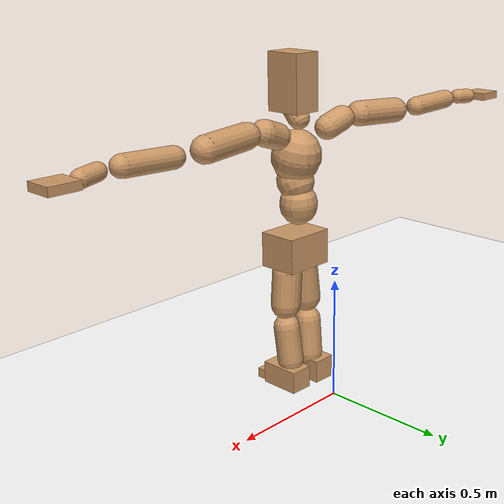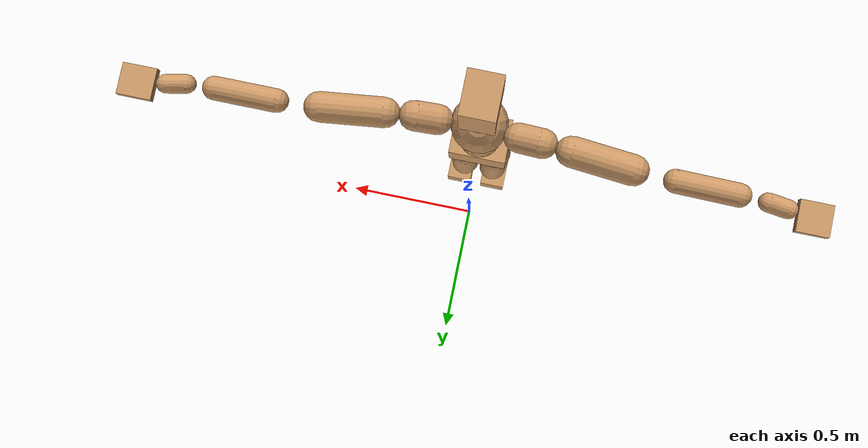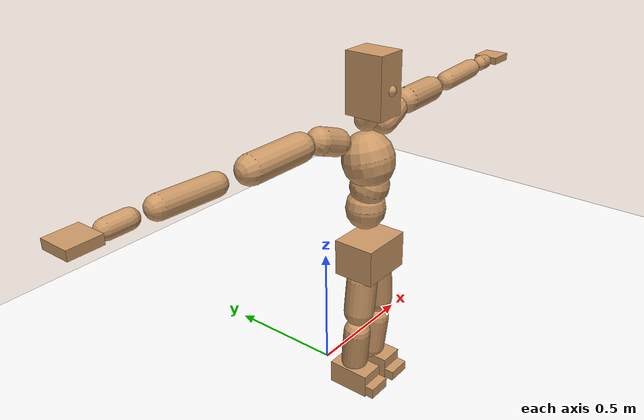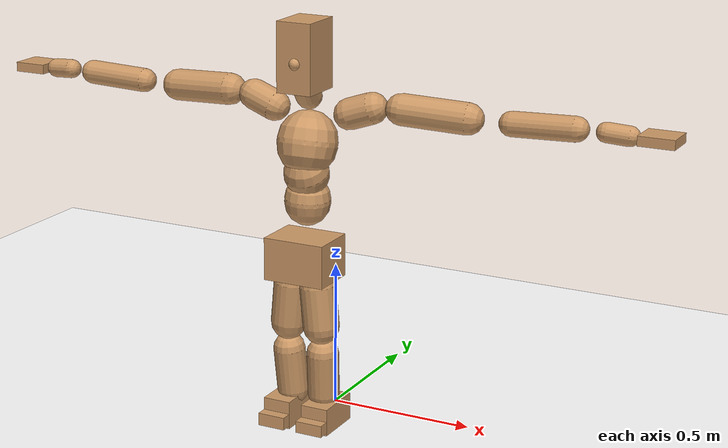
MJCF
<mujoco model="humanoid">
  <option integrator="implicitfast" />

  <visual>
    <global offwidth="1280" offheight="960" />
    <headlight active="1" ambient="0.34 0.34 0.34" diffuse="0.5 0.5 0.5" />
  </visual>

  <default>
    <joint damping="2" stiffness="2" armature="0.01" limited="true" solimplimit="0 .99 .01" />
    <geom condim="1" friction="0.7 0.005 0.0001" solimp=".99 .99 .003" solref="0.015 1" margin="0.001" rgba="0.8 0.6 .4 1" />
    <default class="smplcontact">
      <geom condim="3" friction="1. 0.005 0.0001" solref="0.015 1" solimp="0.98 0.98 0.001" priority="1" />
    </default>
    <default class="stiff_medium">
      <joint stiffness="10" />
    </default>
    <default class="stiff_medium_higher">
      <joint stiffness="50" />
    </default>
    <default class="stiff_high">
      <joint stiffness="100" />
    </default>
  </default>

  <asset>
    <texture type="skybox" builtin="gradient" rgb1="0.99 0.99 0.99" rgb2="0.608 0.828 0.892" width="100" />
    <texture builtin="flat" height="1278" mark="cross" markrgb="1 1 1" name="texgeom" random="0.01" rgb1="0.8 0.6 0.4" rgb2="0.8 0.6 0.4" type="cube" width="127" />
    <texture name="texplane" type="2d" builtin="checker" markrgb="1 1 1" rgb1="0.756 0.772 0.76" rgb2="0.6 0.6 0.6" width="100" height="100" />
    <material name="MatPlane" reflectance="0.5" texture="texplane" texrepeat="1 1" texuniform="true" />
    <material name="geom" texture="texgeom" texuniform="true" />
  </asset>

  <worldbody>
    <light name="tracking_light" pos="0 0 7" dir="0 0 -1" directional="true" cutoff="100" exponent="1" diffuse="1 1 1" specular="0.1 0.1 0.1" mode="trackcom" />
    <camera name="back" pos="0 3 2.4" xyaxes="-1 0 0 0 -1 2" mode="trackcom" />
    <camera name="side" pos="-3 0 2.4" xyaxes="0 -1 0 1 0 2" mode="trackcom" />
    <camera name="front_side" pos="-2.8 -2.8 0.8" xyaxes="0.5 -0.5 0 0.1 0.1 1" mode="trackcom" />
    <geom condim="3" name="floor" pos="0 0 0" rgba="1 1 1 1" size="100 100 .2" type="plane" material="MatPlane" />
    <body name="Pelvis" pos="-0.0018 -0.2233 0.603363" euler="90 0 0">
      <site name="Pelvis" size="0.01" />
      <freejoint name="Pelvis" />
      <geom type="box" pos="-0.0000 -0.0121 -0.0055" size="0.1069 0.0722 0.083" quat="1.0000 0.0000 0.0000 0.0000" density="3165.830099" name="Pelvis" />
      <body name="L_Hip" pos="0.0434375 -0.057125 -0.00425">
        <joint name="L_Hip_x" type="hinge" pos="0 0 0" axis="1 0 0" stiffness="4.682612346938775" range="-160.0 22.92" class="stiff_medium" damping="5.761376063259234" armature="0.003150516248715215"/>
        <joint name="L_Hip_y" type="hinge" pos="0 0 0" axis="0 1 0" stiffness="4.729285204081632" range="-70.0 70.0" class="stiff_medium" damping="5.227190951440424" armature="0.005777516910851337"/>
        <joint name="L_Hip_z" type="hinge" pos="0 0 0" axis="0 0 1" stiffness="4.725288673469388" range="-28.65 90.0" class="stiff_medium" damping="3.8557989532863886" armature="0.003146302077085307"/>
        <geom type="capsule" density="2040.816327" fromto="0.0043125 -0.046875 -0.0005625 0.017125 -0.187625 -0.00225" size="0.0615" name="L_Hip" />
        <body name="L_Knee" pos="0.0214375 -0.2345 -0.0028125">
          <joint name="L_Knee_x" type="hinge" pos="0 0 0" axis="1 0 0" range="-5.16 171.89" damping="3.3147767653831233" armature="0.0034682055009749263" stiffness="0.9900423469387756"/>
          <joint name="L_Knee_y" type="hinge" pos="0 0 0" axis="0 1 0" range="-4.58 6.88" damping="4.406653617352897" armature="0.006327520325715419" stiffness="0.9590346565349543"/>
          <joint name="L_Knee_z" type="hinge" pos="0 0 0" axis="0 0 1" range="-6.88 4.58" damping="3.3272526227236487" armature="0.0034456063533856696" stiffness="1.0040513265306124"/>
          <geom type="capsule" density="1234.567901" fromto="-0.0016875 -0.04975 -0.0054375 -0.0068125 -0.199 -0.021875" size="0.0541" name="L_Knee" />
          <body name="L_Ankle" pos="-0.0085 -0.24875 -0.0273125">
            <joint name="L_Ankle_x" type="hinge" pos="0 0 0" axis="1 0 0" range="-45.84 45.84" class="stiff_medium" damping="3.671773608490045" armature="0.005991965080890671" stiffness="6.25"/>
            <joint name="L_Ankle_y" type="hinge" pos="0 0 0" axis="0 1 0" range="-74.48 22.92" class="stiff_medium" damping="1.858589102984691" armature="0.006141072806637225" stiffness="6.25"/>
            <joint name="L_Ankle_z" type="hinge" pos="0 0 0" axis="0 0 1" range="-4.58 4.58" class="stiff_medium" damping="4.001717943795386" armature="0.007117220667419546" stiffness="6.25"/>
            <geom type="box" pos="0.0145625 -0.0149375 0.015125" size="0.0483 0.0464 0.085" quat="1.0000 0.0000 0.0000 0.0000" density="449.071558" name="L_Ankle" class="smplcontact" />
            <body name="L_Toe" pos="0.0165 -0.034875 0.0745625">
              <joint name="L_Toe_x" type="hinge" pos="0 0 0" axis="1 0 0" range="-91.67 22.92" armature="0.007683229914736312" damping="1.3859319891986324" stiffness="1.25"/>
              <joint name="L_Toe_y" type="hinge" pos="0 0 0" axis="0 1 0" range="-4.58 4.58" armature="0.008367648440754674" damping="1.446344395428927" stiffness="1.25"/>
              <joint name="L_Toe_z" type="hinge" pos="0 0 0" axis="0 0 1" range="-4.58 4.58" armature="0.009751505861703405" damping="1.561370060371932" stiffness="1.25"/>
              <geom type="box" pos="-0.001875 0.0034375 0.0155" size="0.0478 0.02 0.0496" quat="1.0000 0.0000 0.0000 0.0000" density="423.206892" name="L_Toe" class="smplcontact" />
            </body>
          </body>
        </body>
      </body>
      <body name="R_Hip" pos="-0.0423125 -0.0565625 -0.0026875">
        <joint name="R_Hip_x" type="hinge" pos="0 0 0" axis="1 0 0" stiffness="4.682612346938775" range="-160.0 22.92" class="stiff_medium" damping="5.761376063259234" armature="0.003150516248715215"/>
        <joint name="R_Hip_y" type="hinge" pos="0 0 0" axis="0 1 0" stiffness="4.729285204081632" range="-70.0 70.0" class="stiff_medium" damping="5.227190951440424" armature="0.005777516910851337"/>
        <joint name="R_Hip_z" type="hinge" pos="0 0 0" axis="0 0 1" stiffness="4.725288673469388" range="-90.0 28.65" class="stiff_medium" damping="3.8557989532863886" armature="0.003146302077085307"/>
        <geom type="capsule" density="2040.816327" fromto="-0.0048125 -0.0478125 -0.001125 -0.019125 -0.191312 -0.0044375" size="0.0606" name="R_Hip" />
        <body name="R_Knee" pos="-0.0239375 -0.239125 -0.0055625">
          <joint name="R_Knee_x" type="hinge" pos="0 0 0" axis="1 0 0" range="-5.16 171.89" damping="3.3147767653831233" armature="0.0034682055009749263" stiffness="0.9900423469387756"/>
          <joint name="R_Knee_y" type="hinge" pos="0 0 0" axis="0 1 0" range="-6.88 4.58" damping="4.406653617352897" armature="0.006327520325715419" stiffness="0.9590346565349543"/>
          <joint name="R_Knee_z" type="hinge" pos="0 0 0" axis="0 0 1" range="-4.58 6.88" damping="3.3272526227236487" armature="0.0034456063533856696" stiffness="1.0040513265306124"/>
          <geom type="capsule" density="1234.567901" fromto="0.002 -0.0498125 -0.0053125 0.007875 -0.199187 -0.021125" size="0.0541" name="R_Knee" />
          <body name="R_Ankle" pos="0.009875 -0.249 -0.0264375">
            <joint name="R_Ankle_x" type="hinge" pos="0 0 0" axis="1 0 0" range="-45.84 45.84" class="stiff_medium" damping="3.671773608490045" armature="0.005991965080890671" stiffness="6.25"/>
            <joint name="R_Ankle_y" type="hinge" pos="0 0 0" axis="0 1 0" range="-22.92 74.48" class="stiff_medium" damping="1.858589102984691" armature="0.006141072806637225" stiffness="6.25"/>
            <joint name="R_Ankle_z" type="hinge" pos="0 0 0" axis="0 0 1" range="-4.58 4.58" class="stiff_medium" damping="4.001717943795386" armature="0.007117220667419546" stiffness="6.25"/>
            <geom type="box" pos="-0.01325 -0.010875 0.016" size="0.0483 0.0478 0.0865" quat="1.0000 0.0000 0.0000 0.0000" density="434.700981" name="R_Ankle" class="smplcontact" />
            <body name="R_Toe" pos="-0.015875 -0.0300625 0.0770625">
              <joint name="R_Toe_x" type="hinge" pos="0 0 0" axis="1 0 0" range="-91.67 22.92" armature="0.007683229914736312" damping="1.3859319891986324" stiffness="1.25"/>
              <joint name="R_Toe_y" type="hinge" pos="0 0 0" axis="0 1 0" range="-4.58 4.58" armature="0.008367648440754674" damping="1.446344395428927" stiffness="1.25"/>
              <joint name="R_Toe_z" type="hinge" pos="0 0 0" axis="0 0 1" range="-4.58 4.58" armature="0.009751505861703405" damping="1.561370060371932" stiffness="1.25"/>
              <geom type="box" pos="0.002625 0.0028125 0.0141875" size="0.0479 0.0216 0.0493" quat="1.0000 0.0000 0.0000 0.0000" density="407.384095" name="R_Toe" class="smplcontact" />
            </body>
          </body>
        </body>
      </body>
      <body name="Torso" pos="-0.0025 0.109 -0.0267">
        <joint name="Torso_x" type="hinge" pos="0 0 0" axis="1 0 0" range="-25.78 57.3" class="stiff_medium" damping="17.81661784253542" armature="0.012204442824088032" stiffness="11.55979291666667"/>
        <joint name="Torso_y" type="hinge" pos="0 0 0" axis="0 1 0" range="-57.3 57.3" class="stiff_high" damping="32.66648617457636" armature="0.023482633249027437" stiffness="113.6051595744681"/>
        <joint name="Torso_z" type="hinge" pos="0 0 0" axis="0 0 1" range="-34.38 34.38" class="stiff_high" damping="26.53205559463283" armature="0.016035100718302133" stiffness="109.75141136363638"/>
        <geom type="capsule" density="2040.816327" fromto="0.0025 0.0608 0.0005 0.003 0.0743 0.0006" size="0.0769" name="Torso" />
        <body name="Spine" pos="0.0055 0.1352 0.0011">
          <joint name="Spine_x" type="hinge" pos="0 0 0" axis="1 0 0" stiffness="11.652306458333332" range="-25.78 57.3" class="stiff_medium" damping="18.346849955919502" armature="0.012838923235543207"/>
          <joint name="Spine_y" type="hinge" pos="0 0 0" axis="0 1 0" stiffness="12.490174523809525" range="-57.3 57.3" class="stiff_high" damping="13.727844217436889" armature="0.02357524439747789"/>
          <joint name="Spine_z" type="hinge" pos="0 0 0" axis="0 0 1" stiffness="24.140002666666668" range="-34.38 34.38" class="stiff_high" damping="18.060617405335822" armature="0.01876702252078363"/>
          <geom type="capsule" density="2040.816327" fromto="0.0007 0.0238 0.0114 0.0008 0.0291 0.014" size="0.0755" name="Spine" />
          <body name="Chest" pos="0.0015 0.0529 0.0254">
            <joint name="Chest_x" type="hinge" pos="0 0 0" axis="1 0 0" stiffness="12.52777088888889" range="-25.78 57.3" class="stiff_medium" damping="19.3234206846418" armature="0.013246821899117762"/>
            <joint name="Chest_y" type="hinge" pos="0 0 0" axis="0 1 0" stiffness="14.856075609756099" range="-57.3 57.3" class="stiff_high" damping="14.973397185345428" armature="0.023580695741040242"/>
            <joint name="Chest_z" type="hinge" pos="0 0 0" axis="0 0 1" stiffness="24.504841860465113" range="-34.38 34.38" class="stiff_high" damping="18.776413152497923" armature="0.019982087898338156"/>
            <geom type="capsule" density="2040.816327" fromto="-0.0009 0.0682 -0.0173 -0.001 0.0833 -0.0212" size="0.1002" name="Chest" />
            <body name="Neck" pos="-0.0028 0.2139 -0.0429">
              <joint name="Neck_x" type="hinge" pos="0 0 0" axis="1 0 0" range="-28.65 57.3" class="stiff_medium_higher" damping="9.999999999999996" armature="0.009999999999999993" stiffness="50.0"/>
              <joint name="Neck_y" type="hinge" pos="0 0 0" axis="0 1 0" range="-40.11 40.11" class="stiff_medium_higher" damping="10.0" armature="0.01" stiffness="50.0"/>
              <joint name="Neck_z" type="hinge" pos="0 0 0" axis="0 0 1" range="-40.11 40.11" class="stiff_medium_higher" damping="9.999999999999993" armature="0.009999999999999985" stiffness="50.0"/>
              <geom type="capsule" density="1000" fromto="0.001 0.013 0.0103 0.0041 0.052 0.0411" size="0.0436" name="Neck" />
              <body name="Head" pos="0.0052 0.065 0.0513">
                <joint name="Head_x" type="hinge" pos="0 0 0" axis="1 0 0" range="-28.65 57.3" class="stiff_medium_higher" damping="1.9999999999999973" armature="0.009999999999999974" stiffness="50.0"/>
                <joint name="Head_y" type="hinge" pos="0 0 0" axis="0 1 0" range="-40.11 40.11" class="stiff_medium_higher" damping="2.0" armature="0.010000000000000002" stiffness="50.0"/>
                <joint name="Head_z" type="hinge" pos="0 0 0" axis="0 0 1" range="-40.11 40.11" class="stiff_medium_higher" damping="1.9999999999999971" armature="0.00999999999999997" stiffness="50.0"/>
                <geom type="box" pos="-0.0042 0.0876 -0.0116" size="0.0606 0.1154 0.076" quat="1.0000 0.0000 0.0000 0.0000" density="1018.069894" name="Head" />
                <geom type="capsule" name="nose" size="0.02 0.01" pos="0 0.07 0.05" quat="1 0 0 0" mass="0" contype="0" conaffinity="0" />
              </body>
            </body>
            <body name="L_Thorax" pos="0.11032 0.17038 -0.04774">
              <joint name="L_Thorax_x" type="hinge" pos="0 0 0" axis="1 0 0" range="-10.89 4.58" class="stiff_medium_higher" damping="36.24085805878967" armature="0.018856138634744068" stiffness="87.06712295918368"/>
              <joint name="L_Thorax_y" type="hinge" pos="0 0 0" axis="0 1 0" range="-28.65 17.19" class="stiff_medium_higher" damping="40.96620891880995" armature="0.023898132129905863" stiffness="87.78041020408163"/>
              <joint name="L_Thorax_z" type="hinge" pos="0 0 0" axis="0 0 1" range="-31.51 40.11" class="stiff_medium_higher" damping="40.968357293553595" armature="0.023902786052476352" stiffness="87.77252448979593"/>
              <geom type="capsule" density="1000" fromto="0.02548 0.00854 -0.00252 0.10192 0.03416 -0.00994" size="0.0521" name="L_Thorax" />
              <body name="L_Shoulder" pos="0.1274 0.0427 -0.01246">
                <joint name="L_Shoulder_x" type="hinge" pos="0 0 0" axis="1 0 0" range="-97.4 97.4" class="stiff_medium" damping="10.216467793124652" armature="0.016750975720820935" stiffness="17.30848"/>
                <joint name="L_Shoulder_y" type="hinge" pos="0 0 0" axis="0 1 0" range="-108.86 80.21" class="stiff_medium" damping="12.210584630805666" armature="0.023662310849895677" stiffness="17.503030918367347"/>
                <joint name="L_Shoulder_z" type="hinge" pos="0 0 0" axis="0 0 1" range="-97.4 85.94" class="stiff_medium" damping="12.207996623471665" armature="0.02366780094775564" stiffness="17.491553877551024"/>
                <geom type="capsule" density="1000" fromto="0.07266 -0.00364 -0.0077 0.29078 -0.01428 -0.0308" size="0.0517" name="L_Shoulder" />
                <body name="L_Elbow" pos="0.36344 -0.01792 -0.0385">
                  <joint name="L_Elbow_x" type="hinge" pos="0 0 0" axis="1 0 0" range="-17.19 4.58" damping="7.58658152557291" armature="0.01362034881744751" stiffness="3.380601775510204"/>
                  <joint name="L_Elbow_y" type="hinge" pos="0 0 0" axis="0 1 0" range="-180.0 17.19" damping="9.758671052618118" armature="0.022523674987219203" stiffness="3.382455510204082"/>
                  <joint name="L_Elbow_z" type="hinge" pos="0 0 0" axis="0 0 1" range="-100.84 4.58" damping="9.760335979040743" armature="0.022552387617329566" stiffness="3.3793019183673465"/>
                  <geom type="capsule" density="1000" fromto="0.06972 0.00252 -0.00028 0.27916 0.01008 -0.00126" size="0.0405" name="L_Elbow" />
                  <body name="L_Wrist" pos="0.34888 0.0126 -0.00168">
                    <joint name="L_Wrist_x" type="hinge" pos="0 0 0" axis="1 0 0" range="-180.0 22.92" armature="0.013168550139584035" damping="2.8121939405269734" stiffness="3.002773530612245"/>
                    <joint name="L_Wrist_y" type="hinge" pos="0 0 0" axis="0 1 0" range="-17.19 17.19" armature="0.019145926143816022" damping="3.4076565933193694" stiffness="3.0325311428571426"/>
                    <joint name="L_Wrist_z" type="hinge" pos="0 0 0" axis="0 0 1" range="-22.92 22.92" armature="0.019468640829170613" damping="3.429448500174693" stiffness="3.0205285306122445"/>
                    <geom type="capsule" density="1000" fromto="0.02352 -0.00224 -0.0042 0.09408 -0.0091 -0.0168" size="0.0318" name="L_Wrist" class="smplcontact" />
                    <body name="L_Hand" pos="0.1176 -0.01148 -0.02086">
                      <joint name="L_Hand_x" type="hinge" pos="0 0 0" axis="1 0 0" range="-17.19 17.19" armature="0.010418235140997446" damping="2.4154112856734296" stiffness="2.8000000000000003"/>
                      <joint name="L_Hand_y" type="hinge" pos="0 0 0" axis="0 1 0" range="-51.57 51.57" armature="0.015057977012994024" damping="2.903871058996362" stiffness="2.8000000000000003"/>
                      <joint name="L_Hand_z" type="hinge" pos="0 0 0" axis="0 0 1" range="-91.67 91.67" armature="0.016294763602145518" damping="3.020772685456734" stiffness="2.8000000000000003"/>
                      <geom type="box" pos="0.06902 0.0014 -0.00812" size="0.0585 0.0158 0.0538" quat="1.0000 0.0000 0.0000 0.0000" density="400.552564" name="L_Hand" class="smplcontact" />
                    </body>
                  </body>
                </body>
              </body>
            </body>
            <body name="R_Thorax" pos="-0.11452 0.16632 -0.05404">
              <joint name="R_Thorax_x" type="hinge" pos="0 0 0" axis="1 0 0" range="-10.89 4.58" class="stiff_medium_higher" damping="36.24085805878967" armature="0.018856138634744068" stiffness="87.06712295918368"/>
              <joint name="R_Thorax_y" type="hinge" pos="0 0 0" axis="0 1 0" range="-17.19 28.65" class="stiff_medium_higher" damping="40.96620891880995" armature="0.023898132129905863" stiffness="87.78041020408163"/>
              <joint name="R_Thorax_z" type="hinge" pos="0 0 0" axis="0 0 1" range="-40.11 31.51" class="stiff_medium_higher" damping="40.968357293553595" armature="0.023902786052476352" stiffness="87.77252448979593"/>
              <geom type="capsule" density="1000" fromto="-0.02688 0.0091 -0.00252 -0.10752 0.0364 -0.01022" size="0.0511" name="R_Thorax" />
              <body name="R_Shoulder" pos="-0.1344 0.04564 -0.01274">
                <joint name="R_Shoulder_x" type="hinge" pos="0 0 0" axis="1 0 0" range="-97.4 97.4" class="stiff_medium" damping="10.216467793124652" armature="0.016750975720820935" stiffness="17.30848"/>
                <joint name="R_Shoulder_y" type="hinge" pos="0 0 0" axis="0 1 0" range="-80.21 108.86" class="stiff_medium" damping="12.210584630805666" armature="0.023662310849895677" stiffness="17.503030918367347"/>
                <joint name="R_Shoulder_z" type="hinge" pos="0 0 0" axis="0 0 1" range="-85.94 97.4" class="stiff_medium" damping="12.207996623471665" armature="0.02366780094775564" stiffness="17.491553877551024"/>
                <geom type="capsule" density="1000" fromto="-0.07098 -0.00378 -0.00602 -0.2842 -0.01498 -0.02394" size="0.0531" name="R_Shoulder" />
                <body name="R_Elbow" pos="-0.35518 -0.01862 -0.02996">
                  <joint name="R_Elbow_x" type="hinge" pos="0 0 0" axis="1 0 0" range="-17.19 4.58" damping="7.58658152557291" armature="0.01362034881744751" stiffness="3.380601775510204"/>
                  <joint name="R_Elbow_y" type="hinge" pos="0 0 0" axis="0 1 0" range="-17.19 180.0" damping="9.758671052618118" armature="0.022523674987219203" stiffness="3.382455510204082"/>
                  <joint name="R_Elbow_z" type="hinge" pos="0 0 0" axis="0 0 1" range="-4.58 100.84" damping="9.760335979040743" armature="0.022552387617329566" stiffness="3.3793019183673465"/>
                  <geom type="capsule" density="1000" fromto="-0.07154 0.00224 -0.00154 -0.28588 0.00868 -0.00616" size="0.0408" name="R_Elbow" />
                  <body name="R_Wrist" pos="-0.35742 0.01092 -0.00784">
                    <joint name="R_Wrist_x" type="hinge" pos="0 0 0" axis="1 0 0" range="-180.0 22.92" armature="0.013168550139584035" damping="2.8121939405269734" stiffness="3.002773530612245"/>
                    <joint name="R_Wrist_y" type="hinge" pos="0 0 0" axis="0 1 0" range="-17.19 17.19" armature="0.019145926143816022" damping="3.4076565933193694" stiffness="3.0325311428571426"/>
                    <joint name="R_Wrist_z" type="hinge" pos="0 0 0" axis="0 0 1" range="-22.92 22.92" armature="0.019468640829170613" damping="3.429448500174693" stiffness="3.0205285306122445"/>
                    <geom type="capsule" density="1000" fromto="-0.02366 -0.00168 -0.00294 -0.09478 -0.00686 -0.01162" size="0.0326" name="R_Wrist" class="smplcontact" />
                    <body name="R_Hand" pos="-0.11844 -0.00854 -0.01442">
                      <joint name="R_Hand_x" type="hinge" pos="0 0 0" axis="1 0 0" range="-17.19 17.19" armature="0.010418235140997446" damping="2.4154112856734296" stiffness="2.8000000000000003"/>
                      <joint name="R_Hand_y" type="hinge" pos="0 0 0" axis="0 1 0" range="-51.57 51.57" armature="0.015057977012994024" damping="2.903871058996362" stiffness="2.8000000000000003"/>
                      <joint name="R_Hand_z" type="hinge" pos="0 0 0" axis="0 0 1" range="-91.67 91.67" armature="0.016294763602145518" damping="3.020772685456734" stiffness="2.8000000000000003"/>
                      <geom type="box" pos="-0.06468 -0.00126 -0.01106" size="0.0569 0.0164 0.0546" quat="1.0000 0.0000 0.0000 0.0000" density="403.679611" name="R_Hand" class="smplcontact" />
                    </body>
                  </body>
                </body>
              </body>
            </body>
          </body>
        </body>
      </body>
    </body>
  </worldbody>
  <actuator>
    <general name="L_Hip_x" joint="L_Hip_x" biastype="affine" gainprm="134.5455305788832" biasprm="-100.82823820114426 -84.28702224489795 -0.7681834751012312" ctrllimited="true" ctrlrange="-1 1" forcerange="-168.5740444897959 168.5740444897959" />
    <general name="L_Hip_y" joint="L_Hip_y" biastype="affine" gainprm="104.00241357711633" biasprm="0.0 -85.12713367346939 -1.0454381902880847" ctrllimited="true" ctrlrange="-1 1" forcerange="-170.25426734693878 170.25426734693878" />
    <general name="L_Hip_z" joint="L_Hip_z" biastype="affine" gainprm="88.0675601736452" biasprm="45.53682947031718 -85.05519612244898 -0.7711597906572777" ctrllimited="true" ctrlrange="-1 1" forcerange="-170.11039224489795 170.11039224489795" />
    <general name="L_Knee_x" joint="L_Knee_x" biastype="affine" gainprm="137.6700859239888" biasprm="129.64548673316378 -89.1038112244898 -0.8286941913457808" ctrllimited="true" ctrlrange="-1 1" forcerange="-178.2076224489796 178.2076224489796" />
    <general name="L_Knee_y" joint="L_Knee_y" biastype="affine" gainprm="8.63194770327106" biasprm="1.7324153331172283 -86.3131190881459 -1.1016634043382243" ctrllimited="true" ctrlrange="-1 1" forcerange="-172.6262381762918 172.6262381762918" />
    <general name="L_Knee_z" joint="L_Knee_z" biastype="affine" gainprm="9.03712757714746" biasprm="-1.8137341559720035 -90.36461938775511 -0.8318131556809122" ctrllimited="true" ctrlrange="-1 1" forcerange="-180.72923877551023 180.72923877551023" />
    <general name="L_Ankle_x" joint="L_Ankle_x" biastype="affine" gainprm="45.003314762673796" biasprm="0.0 -56.25 -1.2239245361633484" ctrllimited="true" ctrlrange="-1 1" forcerange="-112.5 112.5" />
    <general name="L_Ankle_y" joint="L_Ankle_y" biastype="affine" gainprm="47.811113196819676" biasprm="-25.309455815482774 -56.25 -1.239059401989794" ctrllimited="true" ctrlrange="-1 1" forcerange="-112.5 112.5" />
    <general name="L_Ankle_z" joint="L_Ankle_z" biastype="affine" gainprm="4.496404485450391" biasprm="0.0 -56.25 -1.3339059812651288" ctrllimited="true" ctrlrange="-1 1" forcerange="-112.5 112.5" />
    <general name="L_Toe_x" joint="L_Toe_x" biastype="affine" gainprm="44.999387771856796" biasprm="-26.998061866787282 -45.0 -0.554372795679453" ctrllimited="true" ctrlrange="-1 1" forcerange="-90.0 90.0" />
    <general name="L_Toe_y" joint="L_Toe_y" biastype="affine" gainprm="3.597123588360313" biasprm="0.0 -45.0 -0.5785377581715708" ctrllimited="true" ctrlrange="-1 1" forcerange="-90.0 90.0" />
    <general name="L_Toe_z" joint="L_Toe_z" biastype="affine" gainprm="3.597123588360313" biasprm="0.0 -45.0 -0.6245480241487729" ctrllimited="true" ctrlrange="-1 1" forcerange="-90.0 90.0" />
    <general name="R_Hip_x" joint="R_Hip_x" biastype="affine" gainprm="134.5455305788832" biasprm="-100.82823820114426 -84.28702224489795 -0.7681834751012312" ctrllimited="true" ctrlrange="-1 1" forcerange="-168.5740444897959 168.5740444897959" />
    <general name="R_Hip_y" joint="R_Hip_y" biastype="affine" gainprm="104.00241357711633" biasprm="0.0 -85.12713367346939 -1.0454381902880847" ctrllimited="true" ctrlrange="-1 1" forcerange="-170.25426734693878 170.25426734693878" />
    <general name="R_Hip_z" joint="R_Hip_z" biastype="affine" gainprm="88.0675601736452" biasprm="-45.53682947031718 -85.05519612244898 -0.7711597906572777" ctrllimited="true" ctrlrange="-1 1" forcerange="-170.11039224489795 170.11039224489795" />
    <general name="R_Knee_x" joint="R_Knee_x" biastype="affine" gainprm="137.6700859239888" biasprm="129.64548673316378 -89.1038112244898 -0.8286941913457808" ctrllimited="true" ctrlrange="-1 1" forcerange="-178.2076224489796 178.2076224489796" />
    <general name="R_Knee_y" joint="R_Knee_y" biastype="affine" gainprm="8.63194770327106" biasprm="-1.7324153331172283 -86.3131190881459 -1.1016634043382243" ctrllimited="true" ctrlrange="-1 1" forcerange="-172.6262381762918 172.6262381762918" />
    <general name="R_Knee_z" joint="R_Knee_z" biastype="affine" gainprm="9.03712757714746" biasprm="1.8137341559720035 -90.36461938775511 -0.8318131556809122" ctrllimited="true" ctrlrange="-1 1" forcerange="-180.72923877551023 180.72923877551023" />
    <general name="R_Ankle_x" joint="R_Ankle_x" biastype="affine" gainprm="45.003314762673796" biasprm="0.0 -56.25 -1.2239245361633484" ctrllimited="true" ctrlrange="-1 1" forcerange="-112.5 112.5" />
    <general name="R_Ankle_y" joint="R_Ankle_y" biastype="affine" gainprm="47.811113196819676" biasprm="25.309455815482774 -56.25 -1.239059401989794" ctrllimited="true" ctrlrange="-1 1" forcerange="-112.5 112.5" />
    <general name="R_Ankle_z" joint="R_Ankle_z" biastype="affine" gainprm="4.496404485450391" biasprm="0.0 -56.25 -1.3339059812651288" ctrllimited="true" ctrlrange="-1 1" forcerange="-112.5 112.5" />
    <general name="R_Toe_x" joint="R_Toe_x" biastype="affine" gainprm="44.999387771856796" biasprm="-26.998061866787282 -45.0 -0.554372795679453" ctrllimited="true" ctrlrange="-1 1" forcerange="-90.0 90.0" />
    <general name="R_Toe_y" joint="R_Toe_y" biastype="affine" gainprm="3.597123588360313" biasprm="0.0 -45.0 -0.5785377581715708" ctrllimited="true" ctrlrange="-1 1" forcerange="-90.0 90.0" />
    <general name="R_Toe_z" joint="R_Toe_z" biastype="affine" gainprm="3.597123588360313" biasprm="0.0 -45.0 -0.6245480241487729" ctrllimited="true" ctrlrange="-1 1" forcerange="-90.0 90.0" />
    <general name="Torso_x" joint="Torso_x" biastype="affine" gainprm="201.14310764492842" biasprm="76.31235860577928 -277.43503000000004 -4.7510980913427785" ctrllimited="true" ctrlrange="-1 1" forcerange="-416.1525450000001 416.1525450000001" />
    <general name="Torso_y" joint="Torso_y" biastype="affine" gainprm="272.67246693299046" biasprm="0.0 -272.65238297872344 -6.533297234915273" ctrllimited="true" ctrlrange="-1 1" forcerange="-408.9785744680852 408.9785744680852" />
    <general name="Torso_z" joint="Torso_z" biastype="affine" gainprm="158.05367395985348" biasprm="0.0 -263.4033872727273 -5.306411118926566" ctrllimited="true" ctrlrange="-1 1" forcerange="-395.10508090909093 395.10508090909093" />
    <general name="Spine_x" joint="Spine_x" biastype="affine" gainprm="202.75286496534218" biasprm="76.9230898375973 -279.655355 -4.8924933215785344" ctrllimited="true" ctrlrange="-1 1" forcerange="-419.4830325 419.4830325" />
    <general name="Spine_y" joint="Spine_y" biastype="affine" gainprm="299.7862696190556" biasprm="0.0 -299.7641885714286 -6.8639221087184445" ctrllimited="true" ctrlrange="-1 1" forcerange="-449.6462828571429 449.6462828571429" />
    <general name="Spine_z" joint="Spine_z" biastype="affine" gainprm="173.82082214076556" biasprm="0.0 -289.680032 -6.020205801778608" ctrllimited="true" ctrlrange="-1 1" forcerange="-434.520048 434.520048" />
    <general name="Chest_x" joint="Chest_x" biastype="affine" gainprm="217.98615136277013" biasprm="82.70249748380492 -300.6665013333334 -5.152912182571146" ctrllimited="true" ctrlrange="-1 1" forcerange="-450.999752 450.999752" />
    <general name="Chest_y" joint="Chest_y" biastype="affine" gainprm="356.57207829543177" biasprm="0.0 -356.5458146341464 -7.486698592672714" ctrllimited="true" ctrlrange="-1 1" forcerange="-534.8187219512196 534.8187219512196" />
    <general name="Chest_z" joint="Chest_z" biastype="affine" gainprm="176.44785783296902" biasprm="0.0 -294.0581023255814 -6.258804384165974" ctrllimited="true" ctrlrange="-1 1" forcerange="-441.08715348837205 441.08715348837205" />
    <general name="Neck_x" joint="Neck_x" biastype="affine" gainprm="27.00198885760427" biasprm="9.000662952534757 -36.0 -0.7999999999999997" ctrllimited="true" ctrlrange="-1 1" forcerange="-72.0 72.0" />
    <general name="Neck_y" joint="Neck_y" biastype="affine" gainprm="25.20185626709732" biasprm="0.0 -36.0 -0.8" ctrllimited="true" ctrlrange="-1 1" forcerange="-72.0 72.0" />
    <general name="Neck_z" joint="Neck_z" biastype="affine" gainprm="25.20185626709732" biasprm="0.0 -36.0 -0.7999999999999994" ctrllimited="true" ctrlrange="-1 1" forcerange="-72.0 72.0" />
    <general name="Head_x" joint="Head_x" biastype="affine" gainprm="18.001325905069514" biasprm="6.000441968356505 -24.0 -0.7999999999999989" ctrllimited="true" ctrlrange="-1 1" forcerange="-48.0 48.0" />
    <general name="Head_y" joint="Head_y" biastype="affine" gainprm="16.801237511398213" biasprm="0.0 -24.0 -0.8" ctrllimited="true" ctrlrange="-1 1" forcerange="-48.0 48.0" />
    <general name="Head_z" joint="Head_z" biastype="affine" gainprm="16.801237511398213" biasprm="0.0 -24.0 -0.7999999999999989" ctrllimited="true" ctrlrange="-1 1" forcerange="-48.0 48.0" />
    <general name="L_Thorax_x" joint="L_Thorax_x" biastype="affine" gainprm="28.21000227853141" biasprm="-11.506471517616887 -208.96109510204082 -2.8992686447031737" ctrllimited="true" ctrlrange="-1 1" forcerange="-417.92219020408163 417.92219020408163" />
    <general name="L_Thorax_y" joint="L_Thorax_y" biastype="affine" gainprm="84.27540118209936" biasprm="-21.06885029552484 -210.6729844897959 -3.277296713504796" ctrllimited="true" ctrlrange="-1 1" forcerange="-421.3459689795918 421.3459689795918" />
    <general name="L_Thorax_z" joint="L_Thorax_z" biastype="affine" gainprm="131.65929338702185" biasprm="15.809409705785923 -210.6540587755102 -3.277468583484288" ctrllimited="true" ctrlrange="-1 1" forcerange="-421.3081175510204 421.3081175510204" />
    <general name="L_Shoulder_x" joint="L_Shoulder_x" biastype="affine" gainprm="141.23310021032776" biasprm="0.0 -83.080704 -2.7243914114999073" ctrllimited="true" ctrlrange="-1 1" forcerange="-166.161408 166.161408" />
    <general name="L_Shoulder_y" joint="L_Shoulder_y" biastype="affine" gainprm="138.61955280584408" biasprm="-21.005184259202586 -84.01454840816328 -3.256155901548178" ctrllimited="true" ctrlrange="-1 1" forcerange="-168.02909681632656 168.02909681632656" />
    <general name="L_Shoulder_z" joint="L_Shoulder_z" biastype="affine" gainprm="134.33037540273168" biasprm="-8.396564318290107 -83.9594586122449 -3.2554657662591104" ctrllimited="true" ctrlrange="-1 1" forcerange="-167.9189172244898 167.9189172244898" />
    <general name="L_Elbow_x" joint="L_Elbow_x" biastype="affine" gainprm="23.120771250680953" biasprm="-13.39241733904855 -121.70166391836734 -1.2138530440916657" ctrllimited="true" ctrlrange="-1 1" forcerange="-243.4033278367347 243.4033278367347" />
    <general name="L_Elbow_y" joint="L_Elbow_y" biastype="affine" gainprm="209.53995807470082" biasprm="-173.0067476755517 -121.76839836734695 -1.5613873684188988" ctrllimited="true" ctrlrange="-1 1" forcerange="-243.5367967346939 243.5367967346939" />
    <general name="L_Elbow_z" joint="L_Elbow_z" biastype="affine" gainprm="111.91798423395207" biasprm="-102.19337091975173 -121.65486906122447 -1.5616537566465192" ctrllimited="true" ctrlrange="-1 1" forcerange="-243.30973812244895 243.30973812244895" />
    <general name="L_Wrist_x" joint="L_Wrist_x" biastype="affine" gainprm="31.904067455407095" biasprm="-24.696880129584795 -18.01664118367347 -1.1248775762107894" ctrllimited="true" ctrlrange="-1 1" forcerange="-36.03328236734694 36.03328236734694" />
    <general name="L_Wrist_y" joint="L_Wrist_y" biastype="affine" gainprm="5.458958141984436" biasprm="0.0 -18.195186857142858 -1.363062637327748" ctrllimited="true" ctrlrange="-1 1" forcerange="-36.390373714285715 36.390373714285715" />
    <general name="L_Wrist_z" joint="L_Wrist_z" biastype="affine" gainprm="7.249802464681568" biasprm="0.0 -18.123171183673467 -1.3717794000698773" ctrllimited="true" ctrlrange="-1 1" forcerange="-36.246342367346934 36.246342367346934" />
    <general name="L_Hand_x" joint="L_Hand_x" biastype="affine" gainprm="5.040371253419465" biasprm="0.0 -16.8 -0.9661645142693719" ctrllimited="true" ctrlrange="-1 1" forcerange="-33.6 33.6" />
    <general name="L_Hand_y" joint="L_Hand_y" biastype="affine" gainprm="15.121113760258392" biasprm="0.0 -16.8 -1.161548423598545" ctrllimited="true" ctrlrange="-1 1" forcerange="-33.6 33.6" />
    <general name="L_Hand_z" joint="L_Hand_z" biastype="affine" gainprm="26.879047865093792" biasprm="0.0 -16.8 -1.2083090741826936" ctrllimited="true" ctrlrange="-1 1" forcerange="-33.6 33.6" />
    <general name="R_Thorax_x" joint="R_Thorax_x" biastype="affine" gainprm="28.21000227853141" biasprm="-11.506471517616887 -208.96109510204082 -2.8992686447031737" ctrllimited="true" ctrlrange="-1 1" forcerange="-417.92219020408163 417.92219020408163" />
    <general name="R_Thorax_y" joint="R_Thorax_y" biastype="affine" gainprm="84.27540118209936" biasprm="21.068850295524825 -210.6729844897959 -3.277296713504796" ctrllimited="true" ctrlrange="-1 1" forcerange="-421.3459689795918 421.3459689795918" />
    <general name="R_Thorax_z" joint="R_Thorax_z" biastype="affine" gainprm="131.65929338702185" biasprm="-15.809409705785923 -210.6540587755102 -3.277468583484288" ctrllimited="true" ctrlrange="-1 1" forcerange="-421.3081175510204 421.3081175510204" />
    <general name="R_Shoulder_x" joint="R_Shoulder_x" biastype="affine" gainprm="141.23310021032776" biasprm="0.0 -83.080704 -2.7243914114999073" ctrllimited="true" ctrlrange="-1 1" forcerange="-166.161408 166.161408" />
    <general name="R_Shoulder_y" joint="R_Shoulder_y" biastype="affine" gainprm="138.61955280584408" biasprm="21.005184259202586 -84.01454840816328 -3.256155901548178" ctrllimited="true" ctrlrange="-1 1" forcerange="-168.02909681632656 168.02909681632656" />
    <general name="R_Shoulder_z" joint="R_Shoulder_z" biastype="affine" gainprm="134.33037540273168" biasprm="8.396564318290089 -83.9594586122449 -3.2554657662591104" ctrllimited="true" ctrlrange="-1 1" forcerange="-167.9189172244898 167.9189172244898" />
    <general name="R_Elbow_x" joint="R_Elbow_x" biastype="affine" gainprm="23.120771250680953" biasprm="-13.39241733904855 -121.70166391836734 -1.2138530440916657" ctrllimited="true" ctrlrange="-1 1" forcerange="-243.4033278367347 243.4033278367347" />
    <general name="R_Elbow_y" joint="R_Elbow_y" biastype="affine" gainprm="209.53995807470082" biasprm="173.0067476755517 -121.76839836734695 -1.5613873684188988" ctrllimited="true" ctrlrange="-1 1" forcerange="-243.5367967346939 243.5367967346939" />
    <general name="R_Elbow_z" joint="R_Elbow_z" biastype="affine" gainprm="111.91798423395207" biasprm="102.19337091975173 -121.65486906122447 -1.5616537566465192" ctrllimited="true" ctrlrange="-1 1" forcerange="-243.30973812244895 243.30973812244895" />
    <general name="R_Wrist_x" joint="R_Wrist_x" biastype="affine" gainprm="31.904067455407095" biasprm="-24.696880129584795 -18.01664118367347 -1.1248775762107894" ctrllimited="true" ctrlrange="-1 1" forcerange="-36.03328236734694 36.03328236734694" />
    <general name="R_Wrist_y" joint="R_Wrist_y" biastype="affine" gainprm="5.458958141984436" biasprm="0.0 -18.195186857142858 -1.363062637327748" ctrllimited="true" ctrlrange="-1 1" forcerange="-36.390373714285715 36.390373714285715" />
    <general name="R_Wrist_z" joint="R_Wrist_z" biastype="affine" gainprm="7.249802464681568" biasprm="0.0 -18.123171183673467 -1.3717794000698773" ctrllimited="true" ctrlrange="-1 1" forcerange="-36.246342367346934 36.246342367346934" />
    <general name="R_Hand_x" joint="R_Hand_x" biastype="affine" gainprm="5.040371253419465" biasprm="0.0 -16.8 -0.9661645142693719" ctrllimited="true" ctrlrange="-1 1" forcerange="-33.6 33.6" />
    <general name="R_Hand_y" joint="R_Hand_y" biastype="affine" gainprm="15.121113760258392" biasprm="0.0 -16.8 -1.161548423598545" ctrllimited="true" ctrlrange="-1 1" forcerange="-33.6 33.6" />
    <general name="R_Hand_z" joint="R_Hand_z" biastype="affine" gainprm="26.879047865093792" biasprm="0.0 -16.8 -1.2083090741826936" ctrllimited="true" ctrlrange="-1 1" forcerange="-33.6 33.6" />
  </actuator>
  <contact>
    <exclude body1="Torso" body2="Chest" />
    <exclude body1="Head" body2="Chest" />
    <exclude body1="R_Knee" body2="R_Toe" />
    <exclude body1="R_Knee" body2="L_Ankle" />
    <exclude body1="R_Knee" body2="L_Toe" />
    <exclude body1="L_Knee" body2="L_Toe" />
    <exclude body1="L_Knee" body2="R_Ankle" />
    <exclude body1="L_Knee" body2="R_Toe" />
    <exclude body1="L_Shoulder" body2="Chest" />
    <exclude body1="R_Shoulder" body2="Chest" />
  </contact>
  <sensor>
    <framelinvel name="sensor_Pelvis_framelinvel" objtype="xbody" objname="Pelvis" />
    <framelinvel name="sensor_L_Hip_framelinvel" objtype="xbody" objname="L_Hip" />
    <framelinvel name="sensor_L_Knee_framelinvel" objtype="xbody" objname="L_Knee" />
    <framelinvel name="sensor_L_Ankle_framelinvel" objtype="xbody" objname="L_Ankle" />
    <framelinvel name="sensor_L_Toe_framelinvel" objtype="xbody" objname="L_Toe" />
    <framelinvel name="sensor_R_Hip_framelinvel" objtype="xbody" objname="R_Hip" />
    <framelinvel name="sensor_R_Knee_framelinvel" objtype="xbody" objname="R_Knee" />
    <framelinvel name="sensor_R_Ankle_framelinvel" objtype="xbody" objname="R_Ankle" />
    <framelinvel name="sensor_R_Toe_framelinvel" objtype="xbody" objname="R_Toe" />
    <framelinvel name="sensor_Torso_framelinvel" objtype="xbody" objname="Torso" />
    <framelinvel name="sensor_Spine_framelinvel" objtype="xbody" objname="Spine" />
    <framelinvel name="sensor_Chest_framelinvel" objtype="xbody" objname="Chest" />
    <framelinvel name="sensor_Neck_framelinvel" objtype="xbody" objname="Neck" />
    <framelinvel name="sensor_Head_framelinvel" objtype="xbody" objname="Head" />
    <framelinvel name="sensor_L_Thorax_framelinvel" objtype="xbody" objname="L_Thorax" />
    <framelinvel name="sensor_L_Shoulder_framelinvel" objtype="xbody" objname="L_Shoulder" />
    <framelinvel name="sensor_L_Elbow_framelinvel" objtype="xbody" objname="L_Elbow" />
    <framelinvel name="sensor_L_Wrist_framelinvel" objtype="xbody" objname="L_Wrist" />
    <framelinvel name="sensor_L_Hand_framelinvel" objtype="xbody" objname="L_Hand" />
    <framelinvel name="sensor_R_Thorax_framelinvel" objtype="xbody" objname="R_Thorax" />
    <framelinvel name="sensor_R_Shoulder_framelinvel" objtype="xbody" objname="R_Shoulder" />
    <framelinvel name="sensor_R_Elbow_framelinvel" objtype="xbody" objname="R_Elbow" />
    <framelinvel name="sensor_R_Wrist_framelinvel" objtype="xbody" objname="R_Wrist" />
    <framelinvel name="sensor_R_Hand_framelinvel" objtype="xbody" objname="R_Hand" />
    <frameangvel name="sensor_Pelvis_frameangvel" objtype="xbody" objname="Pelvis" />
    <frameangvel name="sensor_L_Hip_frameangvel" objtype="xbody" objname="L_Hip" />
    <frameangvel name="sensor_L_Knee_frameangvel" objtype="xbody" objname="L_Knee" />
    <frameangvel name="sensor_L_Ankle_frameangvel" objtype="xbody" objname="L_Ankle" />
    <frameangvel name="sensor_L_Toe_frameangvel" objtype="xbody" objname="L_Toe" />
    <frameangvel name="sensor_R_Hip_frameangvel" objtype="xbody" objname="R_Hip" />
    <frameangvel name="sensor_R_Knee_frameangvel" objtype="xbody" objname="R_Knee" />
    <frameangvel name="sensor_R_Ankle_frameangvel" objtype="xbody" objname="R_Ankle" />
    <frameangvel name="sensor_R_Toe_frameangvel" objtype="xbody" objname="R_Toe" />
    <frameangvel name="sensor_Torso_frameangvel" objtype="xbody" objname="Torso" />
    <frameangvel name="sensor_Spine_frameangvel" objtype="xbody" objname="Spine" />
    <frameangvel name="sensor_Chest_frameangvel" objtype="xbody" objname="Chest" />
    <frameangvel name="sensor_Neck_frameangvel" objtype="xbody" objname="Neck" />
    <frameangvel name="sensor_Head_frameangvel" objtype="xbody" objname="Head" />
    <frameangvel name="sensor_L_Thorax_frameangvel" objtype="xbody" objname="L_Thorax" />
    <frameangvel name="sensor_L_Shoulder_frameangvel" objtype="xbody" objname="L_Shoulder" />
    <frameangvel name="sensor_L_Elbow_frameangvel" objtype="xbody" objname="L_Elbow" />
    <frameangvel name="sensor_L_Wrist_frameangvel" objtype="xbody" objname="L_Wrist" />
    <frameangvel name="sensor_L_Hand_frameangvel" objtype="xbody" objname="L_Hand" />
    <frameangvel name="sensor_R_Thorax_frameangvel" objtype="xbody" objname="R_Thorax" />
    <frameangvel name="sensor_R_Shoulder_frameangvel" objtype="xbody" objname="R_Shoulder" />
    <frameangvel name="sensor_R_Elbow_frameangvel" objtype="xbody" objname="R_Elbow" />
    <frameangvel name="sensor_R_Wrist_frameangvel" objtype="xbody" objname="R_Wrist" />
    <frameangvel name="sensor_R_Hand_frameangvel" objtype="xbody" objname="R_Hand" />
    <subtreelinvel name="Chest_subtreelinvel" body="Chest" />
    <gyro name="Pelvis_gyro" site="Pelvis" />
  </sensor>
</mujoco>
